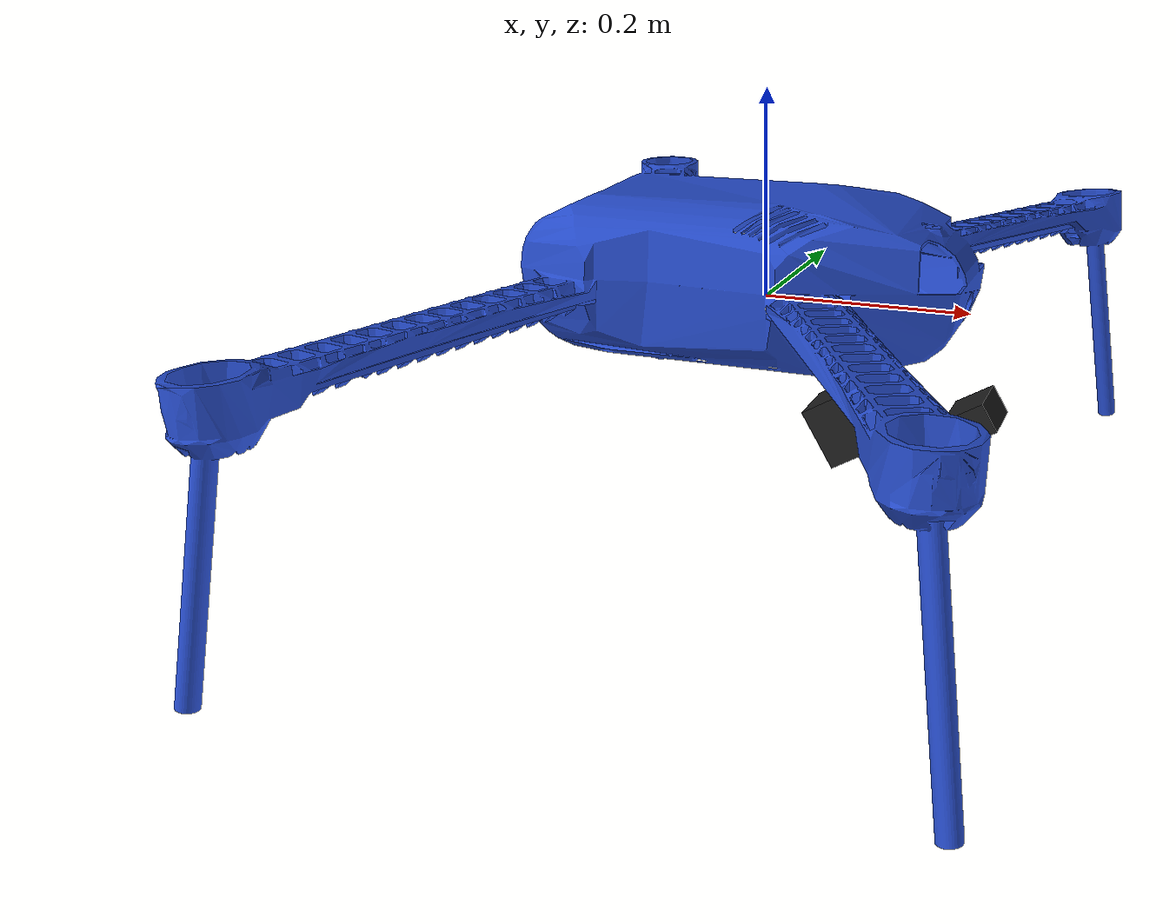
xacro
<?xml version="1.0"?>
<robot
  name="iris"
  xmlns:xacro="http://ros.org/wiki/xacro"
>

	<xacro:include filename="$(find uri_gazebo)/urdf/iris_base.urdf.xacro" />
	<xacro:iris_base name="iris_base">
		<origin xyz="0 0 0" rpy="0 0 0"/>
	</xacro:iris_base>

	<!-- laser Range Finder -->
	<xacro:include filename="$(find uri_gazebo)/urdf/generic_laser.urdf.xacro" />
	<xacro:generic_laser
		name="hokuyo"
		parent="base_link"
		size_x="0.062" size_y="0.062" size_z="0.0875"
		ros_topic="hokuyo"
		visualize_laser="true"
		update_rate="40"
		samples="1081"
		min_angle="-2.35619449019"
		max_angle="2.35619449019"
		range_min="0.04"
		range_max="60.0"
		range_res="0.01"
		noise_mean="0.0"
		noise_stddv="0.03">
		<origin xyz="0.1 0.0 -0.11" rpy="0 ${M_PI/3} 0"/>
	</xacro:generic_laser>

	<xacro:include filename="$(find uri_gazebo)/urdf/generic_camera.urdf.xacro" />
	<xacro:generic_camera name="left_camera" parent="base_link" ros_topic="camera_image" cam_info_topic="camera_info" update_rate="20" res_x="1920" res_y="1080" image_format="R8G8B8" hfov="${0.6/M_PI * 180.0}">
		<origin xyz="0.21 0.0 -0.1" rpy="0 1.0471975512 0"/>
	</xacro:generic_camera>

	<!-- Sonar Range Finder -->

</robot>

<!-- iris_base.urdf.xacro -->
<robot name="iris"  xmlns:xacro="http://ros.org/wiki/xacro">

	<xacro:macro name="iris_base" params="name">

		<link name="base_link">
			<collision name='body'>
				<geometry>
					<mesh filename="package://uri_gazebo/meshes/iris_collision.dae" scale="1 1 1" />
				</geometry>
			</collision>
			<visual name='body'>
				<geometry>
					<mesh filename="package://uri_gazebo/meshes/iris.dae" scale="1 1 1" />
				</geometry>
			</visual>
		</link>

		<gazebo reference="base_link">
			<material>URI/Blue</material>
		</gazebo>
	</xacro:macro>

</robot>

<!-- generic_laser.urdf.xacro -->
<robot xmlns:xacro="http://www.ros.org/wiki/xacro">

<xacro:property name="M_PI" value="3.1415926535897931" />

<xacro:macro name="generic_laser" params="name parent *origin
						 ros_topic
						 size_x size_y size_z
						 update_rate
						 samples
						 min_angle
						 max_angle
						 range_min
						 range_max
						 range_res
						 visualize_laser
						 noise_mean
						 noise_stddv">
	<joint name="${name}_joint" type="fixed">
		<xacro:insert_block name="origin" />
		<parent link="${parent}"/>
		<child link="${name}_link"/>
	</joint>

	<link name="${name}_link">
		<inertial>
			<mass value="0.001" />
			<origin xyz="0 0 0" rpy="0 0 0" />
			<inertia ixx="0.0001" ixy="0" ixz="0" iyy="0.0001" iyz="0" izz="0.0001" />
		</inertial>
		<visual>
			<origin xyz="0 0 0" rpy="0 0 0" />
			<geometry>
				<box size="${size_x} ${size_y} ${size_z}" />
			</geometry>
		</visual>
		<collision>
			<origin xyz="0 0 0" rpy="0 0 0" />
			<geometry>
				<box size="${size_x} ${size_y} ${size_z}" />
			</geometry>
		</collision>
	</link>

	<gazebo reference="${name}_link">
		<material>URI/Black</material>
    <sensor type="gpu_ray" name="head_hokuyo_sensor">
      <pose>0 0 0 0 0 0</pose>
      <visualize>${visualize_laser}</visualize>
      <update_rate>${update_rate}</update_rate>
      <ray>
        <scan>
          <horizontal>
            <samples>${samples}</samples>
            <resolution>1</resolution>
            <min_angle>${min_angle}</min_angle>
            <max_angle>${max_angle}</max_angle>
          </horizontal>
        </scan>
        <range>
          <min>${range_min}</min>
          <max>${range_max}</max>
          <resolution>${range_res}</resolution>
        </range>
        <noise>
          <type>gaussian</type>
          <mean>${noise_mean}</mean>
          <stddev>${noise_stddv}</stddev>
        </noise>
      </ray>
      <plugin name="gazebo_ros_head_hokuyo_controller" filename="libgazebo_ros_gpu_laser.so">
        <topicName>${ros_topic}</topicName>
        <frameName>${name}_link</frameName>
      </plugin>
    </sensor>
	</gazebo>
</xacro:macro>

</robot>

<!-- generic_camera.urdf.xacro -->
<robot xmlns:xacro="http://www.ros.org/wiki/xacro">

<xacro:property name="M_PI" value="3.1415926535897931" />

<xacro:macro name="generic_camera" params="name parent *origin ros_topic cam_info_topic update_rate res_x res_y image_format hfov">
	<joint name="${name}_joint" type="fixed">
		<xacro:insert_block name="origin" />
		<parent link="${parent}"/>
		<child link="${name}_link"/>
	</joint>

	<link name="${name}_link">
		<inertial>
			<mass value="0.001" />
			<origin xyz="0 0 0" rpy="0 0 0" />
			<inertia ixx="0.0001" ixy="0" ixz="0" iyy="0.0001" iyz="0" izz="0.0001" />
		</inertial>
		<visual>
			<origin xyz="0 0 0" rpy="0 0 0" />
			<geometry>
				<box size="0.030 0.059 0.041" />
			</geometry>
		</visual>
		<collision>
			<origin xyz="0 0 0" rpy="0 0 0" />
			<geometry>
				<box size="0.030 0.059 0.041" />
			</geometry>
		</collision>
	</link>

	<gazebo reference="${name}_link">
		<material>URI/Black</material>
		<sensor type="camera" name="${name}_camera_sensor">
			<update_rate>${update_rate}</update_rate>
			<camera>
				<horizontal_fov>${hfov * M_PI/180.0}</horizontal_fov>
				<image>
					<format>${image_format}</format>
					<width>${res_x}</width>
					<height>${res_y}</height>
				</image>
				<clip>
					<near>0.01</near>
					<far>100</far>
				</clip>
			</camera>

			<plugin name="${name}_camera_controller" filename="libgazebo_ros_camera.so">
				<cameraName>${name}</cameraName>
				<imageTopicName>${ros_topic}</imageTopicName>
				<cameraInfoTopicName>${cam_info_topic}</cameraInfoTopicName>
				<frameName>${name}_optical_frame</frameName>
			</plugin>
		</sensor>
	</gazebo>
</xacro:macro>

</robot>
